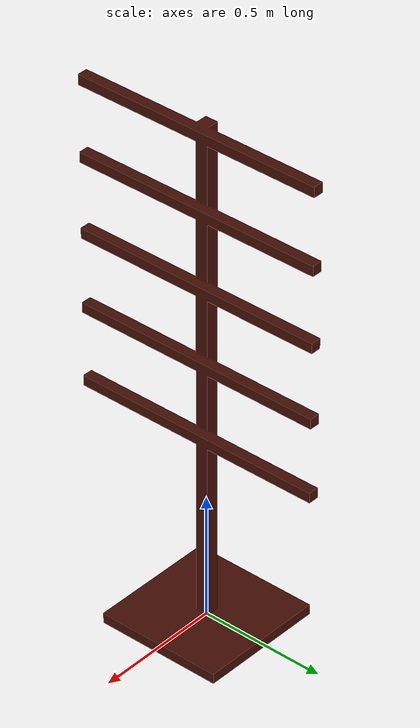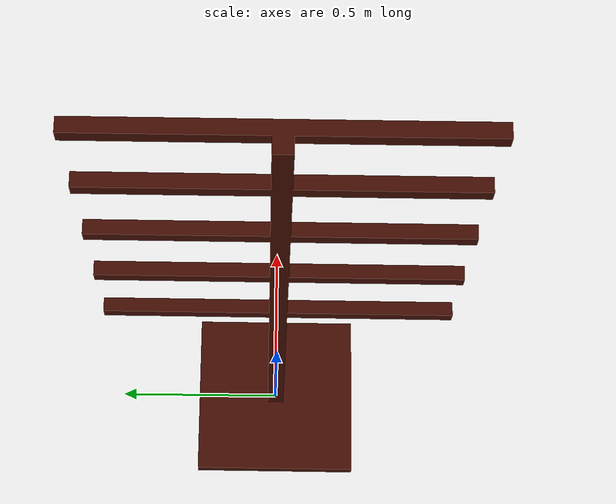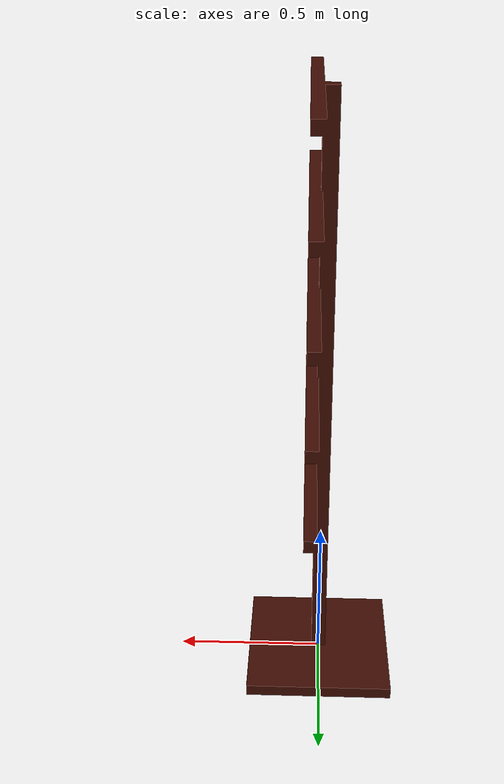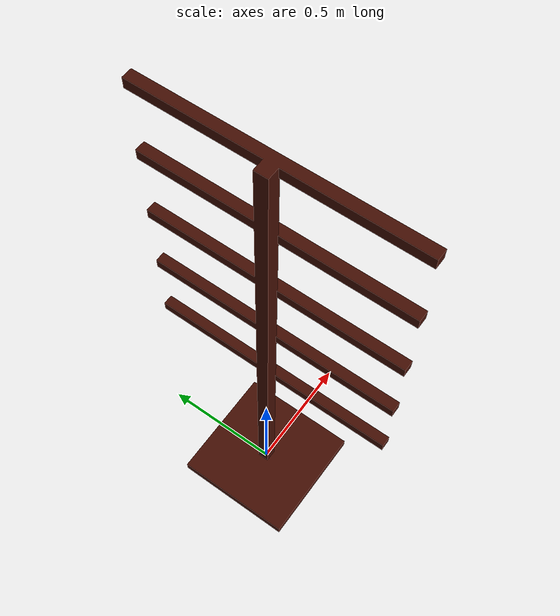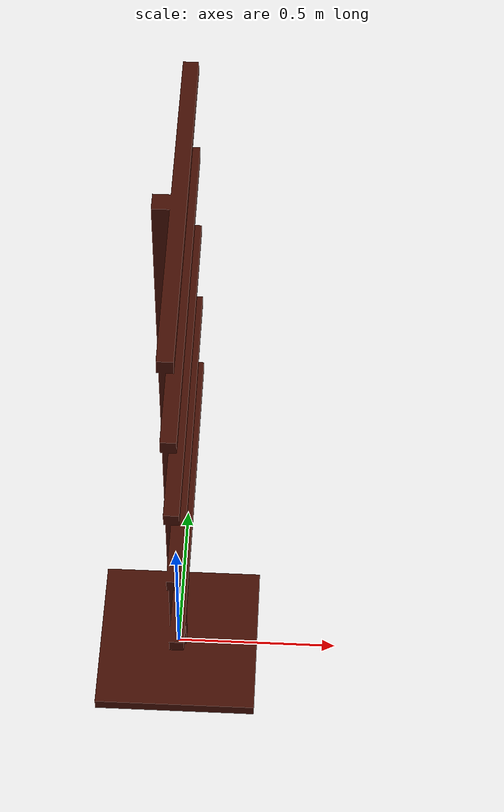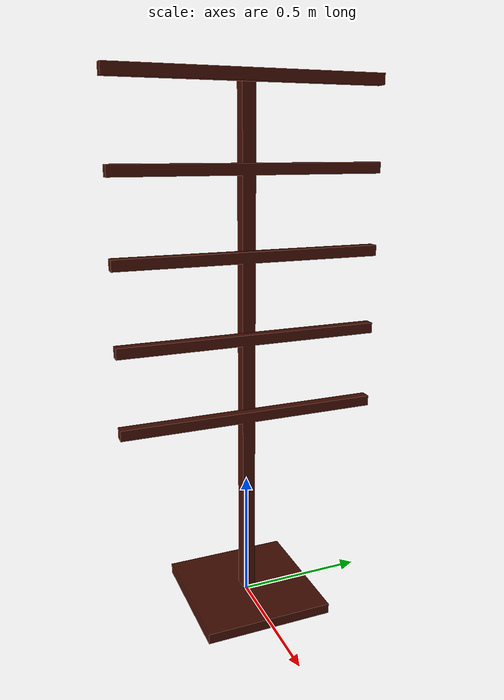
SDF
<sdf version="1.6">
 <world name="3D_4_7">
  <light name="sun" type="directional">
   <pose>0 0 10 0 -0 0</pose>
   <diffuse>1 1 1 1</diffuse>
   <specular>0.2 0.2 0.2 1</specular>
   <attenuation>
    <range>1000</range>
    <constant>0.9</constant>
    <linear>0.01</linear>
    <quadratic>0.001</quadratic>
   </attenuation>
   <direction>-0.5 -0.5 -1</direction>
  </light>
  <physics name="default_physics" default="0" type="ode">
   <max_step_size>0.001</max_step_size>
   <real_time_factor>1</real_time_factor>
   <real_time_update_rate>1000</real_time_update_rate>
  </physics>
  <scene><ambient>1 1 1 1</ambient><background>0.0 0.0 0.0 1</background><shadows>0</shadows></scene>
  <spherical_coordinates>
   <surface_model>EARTH_WGS84</surface_model>
   <latitude_deg>0.00</latitude_deg>
   <longitude_deg>0.00</longitude_deg>
   <elevation>0</elevation>
   <heading_deg>0</heading_deg>
  </spherical_coordinates>
  <gravity>0 0 -9.8</gravity>
  <magnetic_field>6e-06 2.3e-05 -4.2e-05</magnetic_field>
  <atmosphere type="adiabatic"/>
  <model name="digital_tree">
   <link name="digital_tree_link">
    <inertial>
     <mass>50</mass>
     <inertia><ixx>1000</ixx><ixy>1000</ixy><ixz>1000</ixz><iyy>1000</iyy><iyz>1000</iyz><izz>1000</izz></inertia>
    </inertial>
    <collision name="digital_tree_link_collision">
     <geometry><mesh><scale>1 1 1</scale><uri>model://digital_tree/meshes/digital_tree.dae</uri></mesh></geometry>
    </collision>
    <visual name="digital_tree_link_visual">
     <geometry><mesh><scale>1 1 1</scale><uri>model://digital_tree/meshes/digital_tree.dae</uri></mesh></geometry>
    </visual>
   </link>
   <static>1</static>
   <pose>0 0 0 0 0 1.57</pose>
  </model>
  <model name="3">
   <link name="3_link">
    <inertial>
     <mass>0.05</mass>
     <inertia><ixx>1000</ixx><ixy>1000</ixy><ixz>1000</ixz><iyy>1000</iyy><iyz>1000</iyz><izz>1000</izz></inertia>
    </inertial>
    <collision name="3_link_collision">
     <geometry>
      <mesh><scale>1 1 1</scale><size>0.065 0.065 0.065</size><uri>model://apple/meshes/apple.dae</uri></mesh>
     </geometry>
    </collision>
    <visual name="3_link_visual">
     <geometry>
      <mesh><size>0.065 0.065 0.065</size><scale>1 1 1</scale><uri>model://apple/meshes/apple.dae</uri></mesh>
     </geometry>
     <material>
      <ambient>0.26666666666666666 0.16862745098039217 0.12156862745098039 1.0</ambient>
      <diffuse>0.7 0.9 0 1</diffuse>
      <specular>0.2 0.2 0.2 64</specular>
      <emissive>0.1 0 0.1 1</emissive>
     </material>
    </visual>
   </link>
   <static>1</static>
  </model>
  <model name="2">
   <link name="2_link">
    <inertial>
     <mass>0.05</mass>
     <inertia><ixx>1000</ixx><ixy>1000</ixy><ixz>1000</ixz><iyy>1000</iyy><iyz>1000</iyz><izz>1000</izz></inertia>
    </inertial>
    <collision name="2_link_collision">
     <geometry>
      <mesh><scale>1 1 1</scale><size>0.065 0.065 0.065</size><uri>model://apple/meshes/apple.dae</uri></mesh>
     </geometry>
    </collision>
    <visual name="2_link_visual">
     <geometry>
      <mesh><size>0.065 0.065 0.065</size><scale>1 1 1</scale><uri>model://apple/meshes/apple.dae</uri></mesh>
     </geometry>
     <material>
      <ambient>0.30196078431372547 0.27058823529411763 0.17254901960784313 1.0</ambient>
      <diffuse>0.7 0.9 0 1</diffuse>
      <specular>0.2 0.2 0.2 64</specular>
      <emissive>0.1 0 0.1 1</emissive>
     </material>
    </visual>
   </link>
   <static>1</static>
  </model>
  <model name="1">
   <link name="1_link">
    <inertial>
     <mass>0.05</mass>
     <inertia><ixx>1000</ixx><ixy>1000</ixy><ixz>1000</ixz><iyy>1000</iyy><iyz>1000</iyz><izz>1000</izz></inertia>
    </inertial>
    <collision name="1_link_collision">
     <geometry>
      <mesh><scale>1 1 1</scale><size>0.065 0.065 0.065</size><uri>model://apple/meshes/apple.dae</uri></mesh>
     </geometry>
    </collision>
    <visual name="1_link_visual">
     <geometry>
      <mesh><size>0.065 0.065 0.065</size><scale>1 1 1</scale><uri>model://apple/meshes/apple.dae</uri></mesh>
     </geometry>
     <material>
      <ambient>0.2784313725490196 0.25098039215686274 0.17647058823529413 1.0</ambient>
      <diffuse>0.7 0.9 0 1</diffuse>
      <specular>0.2 0.2 0.2 64</specular>
      <emissive>0.1 0 0.1 1</emissive>
     </material>
    </visual>
   </link>
   <static>1</static>
  </model>
 </world>
</sdf>
